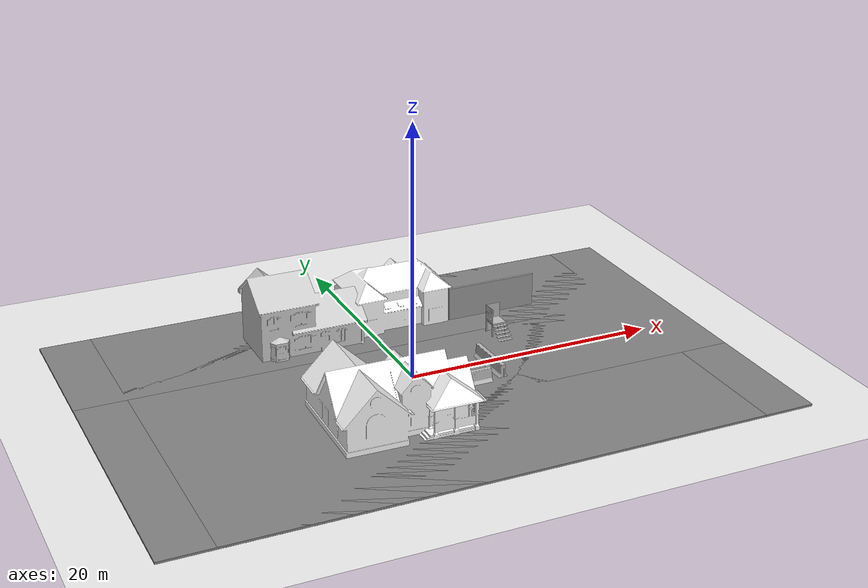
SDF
<sdf version="1.4">
 <world name="default">
  <light name="sun" type="directional">
   <pose>0 0 10 0 0 0</pose>
   <diffuse>0.8 0.8 0.8 1</diffuse>
   <specular>0.2 0.2 0.2 1</specular>
   <attenuation>
    <range>1000</range>
    <constant>0.9</constant>
    <linear>0.01</linear>
    <quadratic>0.001</quadratic>
   </attenuation>
   <direction>-0.5 0.1 -0.9</direction>
  </light>
  <light name="sun2" type="directional">
   <pose>0 0 0.5 3.14 0 0</pose>
   <diffuse>0.8 0.8 0.8 1</diffuse>
   <specular>0.2 0.2 0.2 1</specular>
   <attenuation>
    <range>1000</range>
    <constant>0.9</constant>
    <linear>0.01</linear>
    <quadratic>0.001</quadratic>
   </attenuation>
   <direction>-0.5 0.1 -0.9</direction>
  </light>
  <model name="ground_plane">
   <static>1</static>
   <link name="link">
    <collision name="collision">
     <geometry><plane><normal>0 0 1</normal><size>100 100</size></plane></geometry>
     <surface><friction><ode><mu>100</mu><mu2>50</mu2></ode></friction></surface>
    </collision>
    <visual name="visual">
     <cast_shadows>0</cast_shadows>
     <geometry><plane><normal>0 0 1</normal><size>100 100</size></plane></geometry>
     <material>
      <script><uri>file://media/materials/scripts/gazebo.material</uri><name>Gazebo/White</name></script>
     </material>
    </visual>
    <velocity_decay><linear>0</linear><angular>0</angular></velocity_decay>
   </link>
  </model>
  <physics type="ode">
   <max_step_size>0.001</max_step_size>
   <real_time_factor>1</real_time_factor>
   <real_time_update_rate>1000</real_time_update_rate>
   <gravity>0 0 -9.8</gravity>
  </physics>
  <scene><ambient>0.4 0.4 0.4 1</ambient><background>0.7 0.7 0.7 1</background><shadows>1</shadows></scene>
  <model name="House 3">
   <static>1</static>
   <link name="link">
    <collision name="collision">
     <geometry><mesh><uri>model://house_3/meshes/house_3.dae</uri></mesh></geometry>
    </collision>
    <visual name="visual">
     <geometry><mesh><uri>model://house_3/meshes/house_3.dae</uri></mesh></geometry>
     <material>
      <script>
       <uri>model://house_3/materials/scripts</uri>
       <uri>model://house_3/materials/textures</uri>
       <uri>model://house_1/materials/textures</uri>
       <name>House_3/Diffuse</name>
      </script>
      <shader type="normal_map_object_space">
       <normal_map>model://house_1/materials/textures/House_1_Normal.png</normal_map>
      </shader>
     </material>
    </visual>
    <velocity_decay><linear>0</linear><angular>0</angular></velocity_decay>
   </link>
   <pose>-5 9 0 0 -0 0</pose>
  </model>
  <model name="House 2">
   <static>1</static>
   <link name="link">
    <collision name="collision">
     <geometry><mesh><uri>model://house_2/meshes/house_2.dae</uri></mesh></geometry>
    </collision>
    <visual name="visual">
     <geometry><mesh><uri>model://house_2/meshes/house_2.dae</uri></mesh></geometry>
     <material>
      <script>
       <uri>model://house_2/materials/scripts</uri>
       <uri>model://house_2/materials/textures</uri>
       <uri>model://house_1/materials/textures</uri>
       <name>House_2/Diffuse</name>
      </script>
      <shader type="normal_map_object_space">
       <normal_map>model://house_1/materials/textures/House_1_Normal.png</normal_map>
      </shader>
     </material>
    </visual>
    <velocity_decay><linear>0</linear><angular>0</angular></velocity_decay>
   </link>
   <pose>2 10 0 0 -0 0</pose>
  </model>
  <model name="House 1">
   <static>1</static>
   <link name="link">
    <collision name="collision">
     <geometry><mesh><uri>model://house_1/meshes/house_1.dae</uri></mesh></geometry>
    </collision>
    <visual name="visual">
     <geometry><mesh><uri>model://house_1/meshes/house_1.dae</uri></mesh></geometry>
     <material>
      <script>
       <uri>model://house_1/materials/scripts</uri>
       <uri>model://house_1/materials/textures</uri>
       <name>House_1/Diffuse</name>
      </script>
      <shader type="normal_map_object_space"><normal_map>House_1_Normal.png</normal_map></shader>
     </material>
    </visual>
    <velocity_decay><linear>0</linear><angular>0</angular></velocity_decay>
   </link>
   <pose>-4.18156 -5.60557 0 0 -0 3.12318</pose>
  </model>
  <model name="jersey_barrier">
   <static>1</static>
   <link name="link">
    <visual name="visual">
     <geometry><mesh><uri>model://jersey_barrier/meshes/jersey_barrier.dae</uri></mesh></geometry>
    </visual>
    <collision name="upright">
     <pose>0 0 0.5715 0 -0 0</pose>
     <geometry><box><size>4.06542 0.3063 1.143</size></box></geometry>
    </collision>
    <collision name="base">
     <pose>0 0 0.032258 0 -0 0</pose>
     <geometry><box><size>4.06542 0.8107 0.064516</size></box></geometry>
    </collision>
    <collision name="base2">
     <pose>0 0 0.1 0 -0 0</pose>
     <geometry><box><size>4.06542 0.65 0.1</size></box></geometry>
    </collision>
    <collision name="base3">
     <pose>0 0 0.2 0 -0 0</pose>
     <geometry><box><size>4.06542 0.5 0.1</size></box></geometry>
    </collision>
    <collision name="left-angle">
     <pose>0 -0.224 0.2401 0.9 -0 0</pose>
     <geometry><box><size>4.06542 0.5 0.064516</size></box></geometry>
    </collision>
    <collision name="right-angle">
     <pose>0 0.224 0.2401 -0.9 0 0</pose>
     <geometry><box><size>4.06542 0.5 0.064516</size></box></geometry>
    </collision>
    <velocity_decay><linear>0</linear><angular>0</angular></velocity_decay>
   </link>
   <pose>3 -3 0 0 -0 0</pose>
  </model>
  <model name="jersey_barrier_0">
   <static>1</static>
   <link name="link">
    <visual name="visual">
     <geometry><mesh><uri>model://jersey_barrier/meshes/jersey_barrier.dae</uri></mesh></geometry>
    </visual>
    <collision name="upright">
     <pose>0 0 0.5715 0 -0 0</pose>
     <geometry><box><size>4.06542 0.3063 1.143</size></box></geometry>
    </collision>
    <collision name="base">
     <pose>0 0 0.032258 0 -0 0</pose>
     <geometry><box><size>4.06542 0.8107 0.064516</size></box></geometry>
    </collision>
    <collision name="base2">
     <pose>0 0 0.1 0 -0 0</pose>
     <geometry><box><size>4.06542 0.65 0.1</size></box></geometry>
    </collision>
    <collision name="base3">
     <pose>0 0 0.2 0 -0 0</pose>
     <geometry><box><size>4.06542 0.5 0.1</size></box></geometry>
    </collision>
    <collision name="left-angle">
     <pose>0 -0.224 0.2401 0.9 -0 0</pose>
     <geometry><box><size>4.06542 0.5 0.064516</size></box></geometry>
    </collision>
    <collision name="right-angle">
     <pose>0 0.224 0.2401 -0.9 0 0</pose>
     <geometry><box><size>4.06542 0.5 0.064516</size></box></geometry>
    </collision>
    <velocity_decay><linear>0</linear><angular>0</angular></velocity_decay>
   </link>
   <pose>6 -1 0 0 -0 1.6</pose>
  </model>
  <model name="grey_wall">
   <static>1</static>
   <link name="link">
    <pose>0 0 1.4 0 -0 0</pose>
    <collision name="collision"><geometry><box><size>7.5 0.2 2.8</size></box></geometry></collision>
    <visual name="visual">
     <cast_shadows>0</cast_shadows>
     <geometry><box><size>7.5 0.2 2.8</size></box></geometry>
     <material>
      <script>
       <uri>model://grey_wall/materials/scripts</uri>
       <uri>model://grey_wall/materials/textures</uri>
       <name>vrc/grey_wall</name>
      </script>
     </material>
    </visual>
    <velocity_decay><linear>0</linear><angular>0</angular></velocity_decay>
   </link>
   <pose>10.402 7.71769 0 0 -0 0</pose>
  </model>
  <model name="nist_stairs_120">
   <static>1</static>
   <link name="nist_stairs_120_link">
    <collision name="collision">
     <geometry>
      <mesh><uri>model://nist_stairs_120/meshes/nist_stairs_120.dae</uri><scale>1 1 1</scale></mesh>
     </geometry>
    </collision>
    <visual name="visual">
     <geometry>
      <mesh><uri>model://nist_stairs_120/meshes/nist_stairs_120.dae</uri><scale>1 1 1</scale></mesh>
     </geometry>
    </visual>
    <velocity_decay><linear>0</linear><angular>0</angular></velocity_decay>
   </link>
   <pose>9.01164 2.82223 0 0 -0 0</pose>
  </model>
  <model name="nist_elevated_floor_120">
   <static>1</static>
   <link name="nist_elevated_floor_120">
    <collision name="collision">
     <geometry>
      <mesh><uri>model://nist_elevated_floor_120/meshes/nist_elevated_floor_120.dae</uri><scale>1 1 1</scale></mesh>
     </geometry>
    </collision>
    <visual name="visual">
     <geometry>
      <mesh><uri>model://nist_elevated_floor_120/meshes/nist_elevated_floor_120.dae</uri><scale>1 1 1</scale></mesh>
     </geometry>
    </visual>
    <velocity_decay><linear>0</linear><angular>0</angular></velocity_decay>
   </link>
   <pose>9 4 0 0 -0 0</pose>
  </model>
  <model name="nist_maze_wall_240">
   <static>1</static>
   <link name="nist__maze_wall_240_link">
    <collision name="collision">
     <geometry>
      <mesh><uri>model://nist_maze_wall_240/meshes/nist_maze_wall_240.dae</uri><scale>1 1 1</scale></mesh>
     </geometry>
    </collision>
    <visual name="visual">
     <geometry>
      <mesh><uri>model://nist_maze_wall_240/meshes/nist_maze_wall_240.dae</uri><scale>1 1 1</scale></mesh>
     </geometry>
    </visual>
    <velocity_decay><linear>0</linear><angular>0</angular></velocity_decay>
   </link>
   <pose>9 4 0 0 -0 0</pose>
  </model>
  <model name="nist">
   <static>1</static>
   <link name="nist_maze_wall_triple_holes_120_link">
    <collision name="collision">
     <geometry>
      <mesh>
       <uri>model://nist_maze_wall_triple_holes_120/meshes/nist_maze_wall_triple_holes_120.dae</uri>
       <scale>1 1 1</scale>
      </mesh>
     </geometry>
    </collision>
    <visual name="visual">
     <geometry>
      <mesh>
       <uri>model://nist_maze_wall_triple_holes_120/meshes/nist_maze_wall_triple_holes_120.dae</uri>
       <scale>1 1 1</scale>
      </mesh>
     </geometry>
    </visual>
    <velocity_decay><linear>0</linear><angular>0</angular></velocity_decay>
   </link>
   <pose>9.02578 4.02961 1.2 0 -0 1.6</pose>
  </model>
  <include><uri>model://orchard_ground</uri><name>ground_plane2</name><pose>0 0 0.01 0 0 0</pose></include>
 </world>
</sdf>

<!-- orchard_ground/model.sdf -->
<sdf version='1.6'>
  <model name='orchard_ground'>
    <link name='link'>
      <self_collide>0</self_collide>
      <enable_wind>0</enable_wind>
      <kinematic>0</kinematic>
      <pose frame=''>0 0 0 0 -0 0</pose>
      <gravity>1</gravity>
      <inertial>
        <mass>1</mass>
        <pose frame=''>0 0 0 0 -0 0</pose>
        <inertia>
          <ixx>1</ixx>
          <ixy>0</ixy>
          <ixz>0</ixz>
          <iyy>1</iyy>
          <iyz>0</iyz>
          <izz>1</izz>
        </inertia>
      </inertial>
      <visual name='visual_1'>
        <pose frame=''>-2 5.5 0 0 -0 0</pose>
        <cast_shadows>0</cast_shadows>
        <geometry>
          <box>
            <size>45 21 0.2</size>
          </box>
        </geometry>
        <material>
          <script>
            <uri>model://mud_box/materials/scripts</uri>
            <uri>model://mud_box/materials/textures</uri>
            <name>vrc/mud</name>
          </script>
          <shader type='pixel'>
            <normal_map>__default__</normal_map>
          </shader>
          <ambient>0.5 0.5 0.5 1</ambient>
          <diffuse>0.5 0.5 0.5 1</diffuse>
          <specular>0.2 0.2 0.2 1</specular>
          <emissive>0 0 0 1</emissive>
        </material>
        <transparency>0</transparency>
      </visual>
      <visual name='visual_3'>
        <pose frame=''>2 -5.5 0 0 -0 0</pose>
        <cast_shadows>0</cast_shadows>
        <geometry>
          <box>
            <size>45 21 0.2</size>
          </box>
        </geometry>
        <material>
          <script>
            <uri>model://mud_box/materials/scripts</uri>
            <uri>model://mud_box/materials/textures</uri>
            <name>vrc/mud</name>
          </script>
          <shader type='pixel'>
            <normal_map>__default__</normal_map>
          </shader>
          <ambient>0.5 0.5 0.5 1</ambient>
          <diffuse>0.5 0.5 0.5 1</diffuse>
          <specular>0.2 0.2 0.2 1</specular>
          <emissive>0 0 0 1</emissive>
        </material>
        <transparency>0</transparency>
      </visual>
      <visual name='visual_2'>
        <pose frame=''>2 5.5 0 0 -0 0</pose>
        <cast_shadows>0</cast_shadows>
        <geometry>
          <box>
            <size>45 21 0.2</size>
          </box>
        </geometry>
        <material>
          <script>
            <uri>model://mud_box/materials/scripts</uri>
            <uri>model://mud_box/materials/textures</uri>
            <name>vrc/mud</name>
          </script>
          <shader type='pixel'>
            <normal_map>__default__</normal_map>
          </shader>
          <ambient>0.5 0.5 0.5 1</ambient>
          <diffuse>0.5 0.5 0.5 1</diffuse>
          <specular>0.2 0.2 0.2 1</specular>
          <emissive>0 0 0 1</emissive>
        </material>
        <transparency>0</transparency>
      </visual>
      <visual name='visual_4'>
        <pose frame=''>-2 -5.5 0 0 -0 0</pose>
        <cast_shadows>0</cast_shadows>
        <geometry>
          <box>
            <size>45 21 0.2</size>
          </box>
        </geometry>
        <material>
          <script>
            <uri>model://mud_box/materials/scripts</uri>
            <uri>model://mud_box/materials/textures</uri>
            <name>vrc/mud</name>
          </script>
          <shader type='pixel'>
            <normal_map>__default__</normal_map>
          </shader>
          <ambient>0.5 0.5 0.5 1</ambient>
          <diffuse>0.5 0.5 0.5 1</diffuse>
          <specular>0.2 0.2 0.2 1</specular>
          <emissive>0 0 0 1</emissive>
        </material>
        <transparency>0</transparency>
      </visual>
      <collision name='collision'>
        <laser_retro>0</laser_retro>
        <max_contacts>10</max_contacts>
        <pose frame=''>0 0.2 0 0 -0 0</pose>
        <geometry>
          <box>
            <size>49 32 0.2</size>
          </box>
        </geometry>
        <surface>
          <friction>
            <ode>
              <mu>1</mu>
              <mu2>1</mu2>
              <fdir1>0 0 0</fdir1>
              <slip1>0</slip1>
              <slip2>0</slip2>
            </ode>
            <torsional>
              <coefficient>1</coefficient>
              <patch_radius>0</patch_radius>
              <surface_radius>0</surface_radius>
              <use_patch_radius>1</use_patch_radius>
              <ode>
                <slip>0</slip>
              </ode>
            </torsional>
          </friction>
          <bounce>
            <restitution_coefficient>0</restitution_coefficient>
            <threshold>1e+06</threshold>
          </bounce>
          <contact>
            <collide_without_contact>0</collide_without_contact>
            <collide_without_contact_bitmask>1</collide_without_contact_bitmask>
            <collide_bitmask>1</collide_bitmask>
            <ode>
              <soft_cfm>0</soft_cfm>
              <soft_erp>0.2</soft_erp>
              <kp>1e+13</kp>
              <kd>1</kd>
              <max_vel>0.01</max_vel>
              <min_depth>0</min_depth>
            </ode>
            <bullet>
              <split_impulse>1</split_impulse>
              <split_impulse_penetration_threshold>-0.01</split_impulse_penetration_threshold>
              <soft_cfm>0</soft_cfm>
              <soft_erp>0.2</soft_erp>
              <kp>1e+13</kp>
              <kd>1</kd>
            </bullet>
          </contact>
        </surface>
      </collision>
    </link>
    <static>1</static>
    <allow_auto_disable>1</allow_auto_disable>
  </model>
</sdf>
